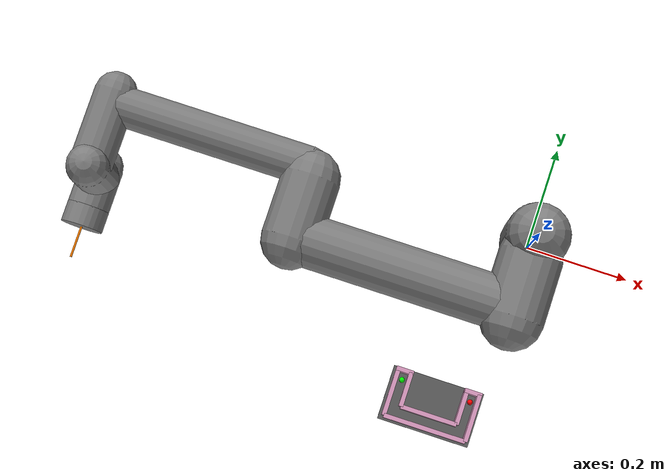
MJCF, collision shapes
<mujoco model="ur5e_umaze">
  <compiler angle="radian" meshdir="C:/Users/adith/Desktop/Uni/Gituni/Y3/2306514_COMP303/Comp303 Dis/Mujoco/universal_robots_ur5e/assets" autolimits="true"/>

  <option integrator="implicitfast" timestep="0.002">
    <flag contact="enable"/>
  </option>

  <size nconmax="200" njmax="500"/>

  <default>
    <default class="ur5e">
      <material specular="0.5" shininess="0.25"/>
      <joint axis="0 1 0" range="-6.28319 6.28319" armature="0.1"/>
      <general gaintype="fixed" biastype="affine" ctrlrange="-6.2831 6.2831"
        gainprm="2000" biasprm="0 -2000 -400" forcerange="-150 150"/>
      <default class="size3">
        <default class="size3_limited">
          <joint range="-3.1415 3.1415"/>
          <general ctrlrange="-3.1415 3.1415"/>
        </default>
      </default>
      <default class="size1">
        <general gainprm="500" biasprm="0 -500 -100" forcerange="-28 28"/>
      </default>
      <default class="visual">
        <geom type="mesh" contype="0" conaffinity="0" group="2"/>
      </default>
      <default class="collision">
        <geom type="capsule" group="3" contype="1" conaffinity="0"/>
        <default class="eef_collision">
          <geom type="cylinder" contype="1" conaffinity="0"/>
        </default>
      </default>
      <site size="0.001" rgba="0.5 0.5 0.5 0.3" group="4"/>
    </default>
  </default>

  <asset>
    <material class="ur5e" name="black"     rgba="0.033 0.033 0.033 1"/>
    <material class="ur5e" name="jointgray" rgba="0.278 0.278 0.278 1"/>
    <material class="ur5e" name="linkgray"  rgba="0.82 0.82 0.82 1"/>
    <material class="ur5e" name="urblue"    rgba="0.49 0.678 0.8 1"/>
    <mesh file="base_0.obj"/>
    <mesh file="base_1.obj"/>
    <mesh file="shoulder_0.obj"/>
    <mesh file="shoulder_1.obj"/>
    <mesh file="shoulder_2.obj"/>
    <mesh file="upperarm_0.obj"/>
    <mesh file="upperarm_1.obj"/>
    <mesh file="upperarm_2.obj"/>
    <mesh file="upperarm_3.obj"/>
    <mesh file="forearm_0.obj"/>
    <mesh file="forearm_1.obj"/>
    <mesh file="forearm_2.obj"/>
    <mesh file="forearm_3.obj"/>
    <mesh file="wrist1_0.obj"/>
    <mesh file="wrist1_1.obj"/>
    <mesh file="wrist1_2.obj"/>
    <mesh file="wrist2_0.obj"/>
    <mesh file="wrist2_1.obj"/>
    <mesh file="wrist2_2.obj"/>
    <mesh file="wrist3.obj"/>
  </asset>

  <worldbody>
    <light name="spotlight" mode="targetbodycom" target="wrist_2_link" pos="0 -1 2"/>

    <body name="base" quat="0 0 0 -1" childclass="ur5e">
      <inertial mass="4.0" pos="0 0 0" diaginertia="0.00443333156 0.00443333156 0.0072"/>
      <geom mesh="base_0" material="black"     class="visual"/>
      <geom mesh="base_1" material="jointgray" class="visual"/>
      <body name="shoulder_link" pos="0 0 0.163">
        <inertial mass="3.7" pos="0 0 0" diaginertia="0.0102675 0.0102675 0.00666"/>
        <joint name="shoulder_pan_joint" class="size3" axis="0 0 1"/>
        <geom mesh="shoulder_0" material="urblue"    class="visual"/>
        <geom mesh="shoulder_1" material="black"     class="visual"/>
        <geom mesh="shoulder_2" material="jointgray" class="visual"/>
        <geom name="shoulder_col" class="collision" size="0.06 0.06" pos="0 0 -0.04"/>
        <body name="upper_arm_link" pos="0 0.138 0" quat="1 0 1 0">
          <inertial mass="8.393" pos="0 0 0.2125" diaginertia="0.133886 0.133886 0.0151074"/>
          <joint name="shoulder_lift_joint" class="size3"/>
          <geom mesh="upperarm_0" material="linkgray"  class="visual"/>
          <geom mesh="upperarm_1" material="black"     class="visual"/>
          <geom mesh="upperarm_2" material="jointgray" class="visual"/>
          <geom mesh="upperarm_3" material="urblue"    class="visual"/>
          <geom name="upperarm_col0" class="collision" pos="0 -0.04 0" quat="1 1 0 0" size="0.06 0.06"/>
          <geom name="upperarm_col1" class="collision" size="0.05 0.2"  pos="0 0 0.2"/>
          <body name="forearm_link" pos="0 -0.131 0.425">
            <inertial mass="2.275" pos="0 0 0.196" diaginertia="0.0311796 0.0311796 0.004095"/>
            <joint name="elbow_joint" class="size3_limited"/>
            <geom mesh="forearm_0" material="urblue"    class="visual"/>
            <geom mesh="forearm_1" material="linkgray"  class="visual"/>
            <geom mesh="forearm_2" material="black"     class="visual"/>
            <geom mesh="forearm_3" material="jointgray" class="visual"/>
            <geom name="forearm_col0" class="collision" pos="0 0.08 0" quat="1 1 0 0" size="0.055 0.06"/>
            <geom name="forearm_col1" class="collision" size="0.038 0.19" pos="0 0 0.2"/>
            <body name="wrist_1_link" pos="0 0 0.392" quat="1 0 1 0">
              <inertial mass="1.219" pos="0 0.127 0" diaginertia="0.0025599 0.0025599 0.0021942"/>
              <joint name="wrist_1_joint" class="size1"/>
              <geom mesh="wrist1_0" material="black"     class="visual"/>
              <geom mesh="wrist1_1" material="urblue"    class="visual"/>
              <geom mesh="wrist1_2" material="jointgray" class="visual"/>
              <geom name="wrist1_col" class="collision" pos="0 0.05 0" quat="1 1 0 0" size="0.04 0.07"/>
              <body name="wrist_2_link" pos="0 0.127 0">
                <inertial mass="1.219" pos="0 0 0.1" diaginertia="0.0025599 0.0025599 0.0021942"/>
                <joint name="wrist_2_joint" axis="0 0 1" class="size1"/>
                <geom mesh="wrist2_0" material="black"     class="visual"/>
                <geom mesh="wrist2_1" material="urblue"    class="visual"/>
                <geom mesh="wrist2_2" material="jointgray" class="visual"/>
                <geom name="wrist2_col0" class="collision" size="0.04 0.06" pos="0 0 0.04"/>
                <geom name="wrist2_col1" class="collision" pos="0 0.02 0.1" quat="1 1 0 0" size="0.04 0.04"/>
                <body name="wrist_3_link" pos="0 0 0.1">
                  <inertial mass="0.1889" pos="0 0.0771683 0" quat="1 0 0 1"
                    diaginertia="0.000132134 9.90863e-05 9.90863e-05"/>
                  <joint name="wrist_3_joint" class="size1"/>
                  <geom material="linkgray" mesh="wrist3" class="visual"/>
                  <geom name="eef_col" class="eef_collision" pos="0 0.08 0" quat="1 1 0 0" size="0.04 0.02"/>
                  <site name="attachment_site" pos="0 0.1 0" quat="-1 1 0 0"/>

                  <!-- Probe: radius=2mm matches real piezo tip
                       Corridor=16mm so clearance=6mm each side — moves freely -->
                  <body name="touch_probe" pos="0 0.1 0" quat="-1 1 0 0">
                    <geom name="probe" type="cylinder"
                      size="0.002 0.060"
                      rgba="1 0.5 0 1"
                      contype="1" conaffinity="1"
                      condim="3" friction="0.3 0.1 0.1"
                      mass="0.02"/>
                    <site name="probe_tip" pos="0 0 0.060" size="0.003" rgba="1 1 0 1"/>
                  </body>
                </body>
              </body>
            </body>
          </body>
        </body>
      </body>
    </body>

    <body name="umaze" pos="0 0 0">

      <!-- LEFT ARM outer — Y: -0.308 to -0.395 -->
      <geom name="u_left_outer"  type="box"
            pos="-0.166 -0.3515  0.166"
            size="0.004  0.0435  0.020"
            rgba="0.85 0.60 0.75 1" contype="1" conaffinity="1"/>

      <!-- LEFT ARM inner — Y: -0.308 to -0.371 (stops at base inner face) -->
      <geom name="u_left_inner"  type="box"
            pos="-0.142 -0.3395  0.166"
            size="0.004  0.0315  0.020"
            rgba="0.85 0.60 0.75 1" contype="1" conaffinity="1"/>

      <!-- LEFT ARM back cap -->
      <geom name="u_left_cap"    type="box"
            pos="-0.154 -0.308  0.166"
            size="0.016  0.004  0.020"
            rgba="0.85 0.60 0.75 1" contype="1" conaffinity="1"/>

      <!-- BASE outer — full width -->
      <geom name="u_base_outer"  type="box"
            pos="-0.090 -0.395  0.166"
            size="0.076  0.004  0.020"
            rgba="0.85 0.60 0.75 1" contype="1" conaffinity="1"/>

      <!-- BASE inner — only between arm inner walls X=-0.142 to X=-0.038
           centre=-0.090  half=0.052 -->
      <geom name="u_base_inner"  type="box"
            pos="-0.090 -0.371  0.166"
            size="0.052  0.004  0.020"
            rgba="0.85 0.60 0.75 1" contype="1" conaffinity="1"/>

      <!-- RIGHT ARM inner — Y: -0.308 to -0.371 (stops at base inner face) -->
      <geom name="u_right_inner" type="box"
            pos="-0.038 -0.3395  0.166"
            size="0.004  0.0315  0.020"
            rgba="0.85 0.60 0.75 1" contype="1" conaffinity="1"/>

      <!-- RIGHT ARM outer — Y: -0.308 to -0.395 -->
      <geom name="u_right_outer" type="box"
            pos="-0.014 -0.3515  0.166"
            size="0.004  0.0435  0.020"
            rgba="0.85 0.60 0.75 1" contype="1" conaffinity="1"/>

      <!-- RIGHT ARM back cap -->
      <geom name="u_right_cap"   type="box"
            pos="-0.026 -0.308  0.166"
            size="0.016  0.004  0.020"
            rgba="0.85 0.60 0.75 1" contype="1" conaffinity="1"/>

      <!-- Floor: visual only -->
      <geom name="u_floor" type="box"
            pos="-0.090 -0.353  0.145"
            size="0.085  0.050  0.004"
            rgba="0.35 0.35 0.35 1" contype="2" conaffinity="2"/>

      <!-- GREEN = start: centre of left arm corridor -->
      <site name="start" pos="-0.154 -0.325  0.166" size="0.005" rgba="0 1 0 1" group="1"/>
      <!-- RED = goal: centre of right arm, same Y as start -->
      <site name="goal"  pos="-0.026 -0.325  0.166" size="0.005" rgba="1 0 0 1" group="1"/>

    </body>

  </worldbody>

  <actuator>
    <general class="size3"         name="shoulder_pan"  joint="shoulder_pan_joint"/>
    <general class="size3"         name="shoulder_lift" joint="shoulder_lift_joint"/>
    <general class="size3_limited" name="elbow"         joint="elbow_joint"/>
    <general class="size1"         name="wrist_1"       joint="wrist_1_joint"/>
    <general class="size1"         name="wrist_2"       joint="wrist_2_joint"/>
    <general class="size1"         name="wrist_3"       joint="wrist_3_joint"/>
  </actuator>

  <sensor>
    <touch name="probe_force" site="probe_tip"/>
  </sensor>

  <keyframe>
    <key name="home"
      qpos="-1.6378 -1.2788 -2.4707 -0.9634  1.5699 -0.0670"
      ctrl="-1.6378 -1.2788 -2.4707 -0.9634  1.5699 -0.0670"/>
  </keyframe>

</mujoco>
